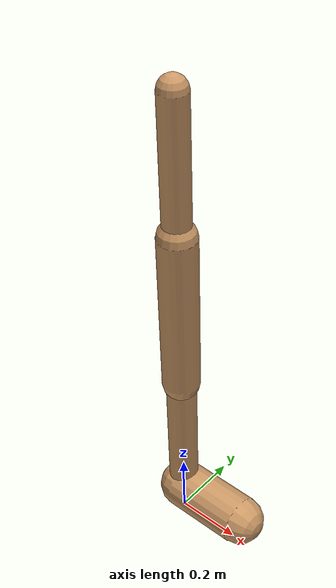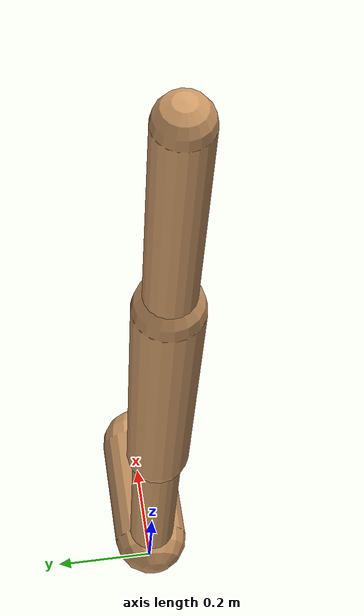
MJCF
<mujoco model="walker2d">
  <compiler angle="degree" coordinate="global" inertiafromgeom="true" />
  <default>
    <joint armature="0.01" damping=".1" limited="true" />
    <geom conaffinity="0" condim="3" contype="1" density="1000" friction="0.8 .1 .1" rgba="0.8 0.6 .4 1" />
  </default>
  <option integrator="RK4" timestep="0.002" />
  <worldbody>

    <body name="torso" pos="0 0 0.10603373721077265">
      <joint armature="0" axis="1 0 0" damping="0" limited="false" name="ignorex" pos="0 0 0" stiffness="0" type="slide" />
      <joint armature="0" axis="0 0 1" damping="0" limited="false" name="ignorez" pos="0 0 0" ref="1.25" stiffness="0" type="slide" />
      <joint armature="0" axis="0 1 0" damping="0" limited="false" name="ignorey" pos="0 0 0" stiffness="0" type="hinge" />
      <geom fromto="0 0 1.45 0 0 1.05" name="torso_geom" size="0.0399584430021725" type="capsule" />
      <body name="thigh">
        <joint axis="0 -1 0" name="thigh_joint" pos="0 0 1.05" range="-150 0" type="hinge" />
        <geom fromto="0.0 0.0 1.05 0.0 0.0 0.5497734929001603" name="thigh_geom" size="0.055778500520012014" type="capsule" />
        <body name="leg" pos="0.0 0.0 -0.05022650709983967">
          <joint axis="0 -1 0" name="leg_joint" pos="0 0 0.6" range="-150 0" type="hinge" />
          <geom fromto="0.0 0.0 0.6 0.0 0.0 0.044192769889067035" name="leg_geom" size="0.044622800416009606" type="capsule" />
          <body name="foot" pos="0.0 0.0 -0.05580723011093297">
            <joint axis="0 -1 0" name="foot_joint" pos="0 0 0.1" range="-45 45" type="hinge" />
            <geom fromto="-0.0 0.0 0.1 0.2242960400710617 0.0 0.1" name="foot_geom" size="0.07441254246873519" type="capsule" />
          </body>
        </body>
      </body>

      <body name="thigh_left">
        <joint axis="0 -1 0" name="thigh_left_joint" pos="0 0 1.05" range="-150 0" type="hinge" />
        <geom fromto="0.0 0.0 1.05 0.0 0.0 0.5497734929001603" name="thigh_left_geom" rgba=".7 .3 .6 1" size="0.055778500520012014" type="capsule" />
        <body name="leg_left" pos="0.0 0.0 -0.05022650709983967">
          <joint axis="0 -1 0" name="leg_left_joint" pos="0 0 0.6" range="-150 0" type="hinge" />
          <geom fromto="0.0 0.0 0.6 0.0 0.0 0.044192769889067035" name="leg_left_geom" rgba=".7 .3 .6 1" size="0.044622800416009606" type="capsule" />
          <body name="foot_left" pos="0.0 0.0 -0.05580723011093297">
            <joint axis="0 -1 0" name="foot_left_joint" pos="0 0 0.1" range="-45 45" type="hinge" />
            <geom fromto="-0.0 0.0 0.1 0.2242960400710617 0.0 0.1" name="foot_left_geom" rgba=".7 .3 .6 1" size="0.07441254246873519" type="capsule" />
          </body>
        </body>
      </body>
    </body>
  </worldbody>
  <actuator>

    <motor ctrllimited="true" ctrlrange="-1.0 1.0" gear="100" joint="thigh_joint" />
    <motor ctrllimited="true" ctrlrange="-1.0 1.0" gear="100" joint="leg_joint" />
    <motor ctrllimited="true" ctrlrange="-1.0 1.0" gear="100" joint="foot_joint" />
    <motor ctrllimited="true" ctrlrange="-1.0 1.0" gear="100" joint="thigh_left_joint" />
    <motor ctrllimited="true" ctrlrange="-1.0 1.0" gear="100" joint="leg_left_joint" />
    <motor ctrllimited="true" ctrlrange="-1.0 1.0" gear="100" joint="foot_left_joint" />

  </actuator>
</mujoco>
